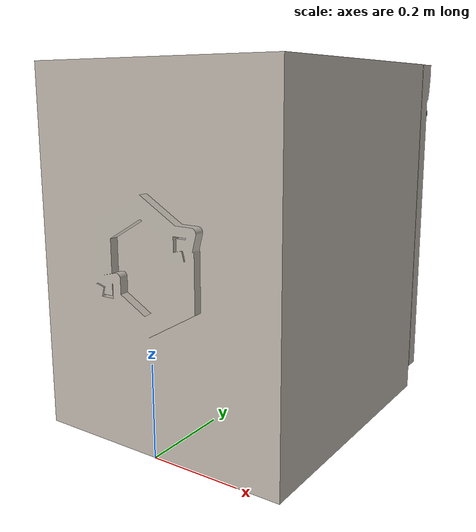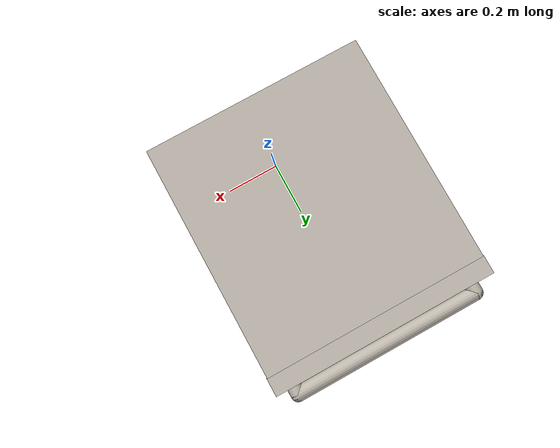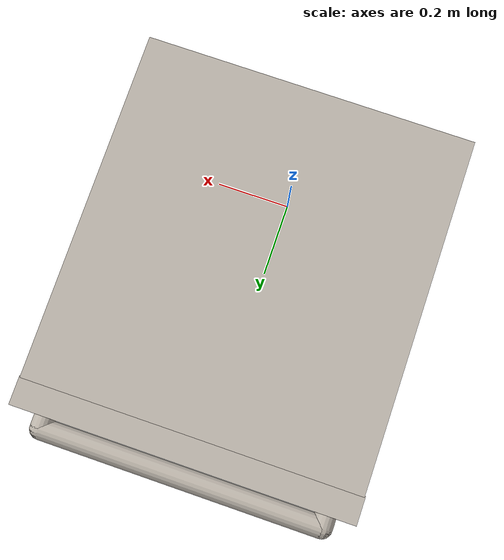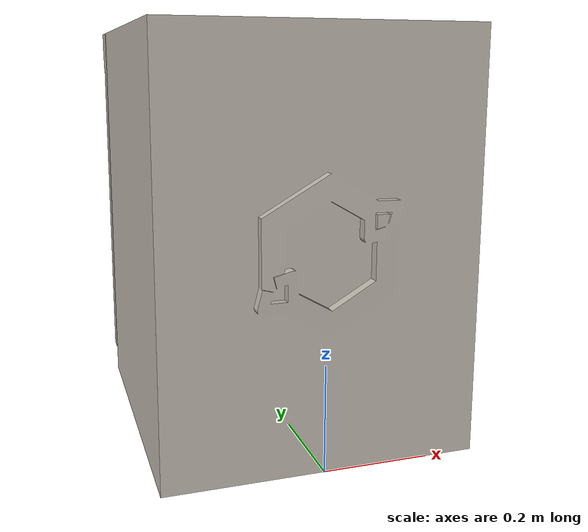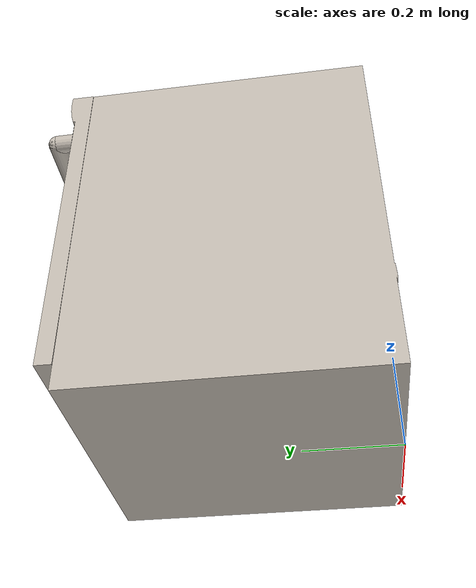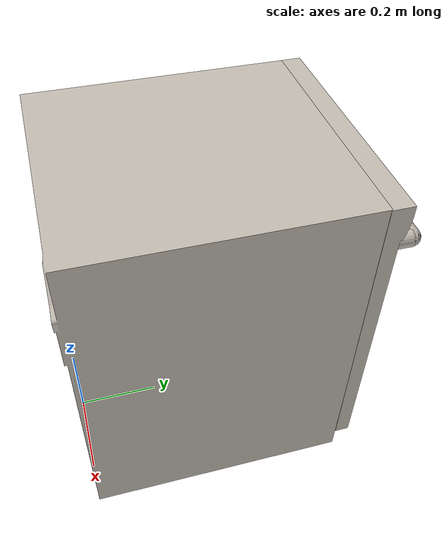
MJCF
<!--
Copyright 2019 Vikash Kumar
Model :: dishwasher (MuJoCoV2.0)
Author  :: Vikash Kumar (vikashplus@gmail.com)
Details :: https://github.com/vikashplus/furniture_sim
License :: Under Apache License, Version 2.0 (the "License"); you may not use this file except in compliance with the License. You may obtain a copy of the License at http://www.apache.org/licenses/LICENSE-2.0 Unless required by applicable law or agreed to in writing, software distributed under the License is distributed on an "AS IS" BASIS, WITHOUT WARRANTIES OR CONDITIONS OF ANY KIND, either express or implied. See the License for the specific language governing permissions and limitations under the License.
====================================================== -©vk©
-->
<mujoco model="Dishwasher">
    <compiler angle="radian" meshdir="" texturedir=""/>
    <include file="../furniture_sim/dishwasher/dishwasher_asset.xml"/>

    <worldbody>
        <body>
            <include file="../furniture_sim/dishwasher/dishwasher_body.xml"/>
        </body>
    </worldbody>

</mujoco>

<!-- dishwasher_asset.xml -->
<mujocoinclude>
    <asset>
        <mesh name="ktc_dishwasher" file="../furniture_sim/dishwasher/meshes/ktc_dishwasher.stl" />
        <mesh name="ktc_dishwasher_rack" file="../furniture_sim/dishwasher/meshes/ktc_dishwasher_rack.stl" />
        <mesh name="ktc_dishwasher_door" file="../furniture_sim/dishwasher/meshes/ktc_dishwasher_door.stl" />
        <texture name="T_Metal_bin" type="cube" height="1" width="1" file="../furniture_sim/common/textures/metal0.png" />
        <material name="M_Metal_bin" texture="T_Metal_bin" texrepeat="3 3" reflectance="0.7" texuniform="false" />
    </asset>

    <default>
        <default class="viz_dishwasher" >
            <geom group="1" type="mesh" material="M_Metal_bin" contype="0" conaffinity="0"/>
        </default>
        <default class="col">
            <geom rgba=".4 .5 .6 1" group="3" contype="1" conaffinity="0"/>
        </default>
   </default>

</mujocoinclude>

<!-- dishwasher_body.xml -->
<mujocoinclude>

    <body name="dishwasher" pos="0 0 0" childclass="viz_dishwasher">
        <geom type="mesh" mesh="ktc_dishwasher" euler="1.57 0 0"/>
        <geom type="box" pos="0 0.312 .756" size=".290 .310 .031" class="col"/>  <!-- top -->
        <geom type="box" pos="0 0.312 .055" size=".290 .310 .055" class="col"/> <!-- bottom -->
        <geom type="box" pos="0.26 0.312 .378" size=".031 .310 .378" class="col"/> <!-- left -->
        <geom type="box" pos="-.26 0.312 .378" size=".031 .310 .378" class="col"/> <!-- right -->
        <geom type="box" pos="0 0.071 .378" size=".290 .0710 .378" class="col"/> <!-- back -->

        <body name="top_rack" pos="0 0.375 0.485">
            <inertial pos="0 0 0" mass="2" diaginertia="1 1 1" />
            <joint name="top_rack" pos="0 0 0" axis="0 1 0" type="slide" limited="true" range="0 0.274" damping="0.01" frictionloss="0.01" />
            <geom type="mesh" mesh="ktc_dishwasher_rack" euler="1.57 0 0"/>
        </body>
        <body name="door" pos="0 .622 0.05">
            <inertial pos="0 0 0" mass="2" diaginertia="1 1 1" />
            <joint name="door" axis="1 0 0" limited="true" range="-1.5 0" damping="0.01" frictionloss="0.01"/>
            <geom type="mesh" mesh="ktc_dishwasher_door" mass="2" euler="1.57 0 0"/>
            <geom type="box" pos="0 0.025 .37" size=".290 .010 .365" rgba=".1 .1 .1 1" />
            <geom type="capsule" pos="0 0.08 .625" size=".020 .260" euler="0 1.57 0"/>
            <geom type="capsule" pos="0.26 0.06 .625" size=".020 .020" euler="1.57 0 0"/>
            <geom type="capsule" pos="-.26 0.06 .625" size=".020 .020" euler="1.57 0 0"/>

            <geom type="box" pos="0 0.013 .37" size=".290 .0210 .365" class="col"/>
            <geom type="capsule" pos="0 0.08 .625" size=".020 .260" euler="0 1.57 0" class="col"/>
            <geom type="capsule" pos="0.26 0.06 .625" size=".020 .020" euler="1.57 0 0" class="col"/>
            <geom type="capsule" pos="-.26 0.06 .625" size=".020 .020" euler="1.57 0 0" class="col"/>
        </body>
    </body>
</mujocoinclude>
